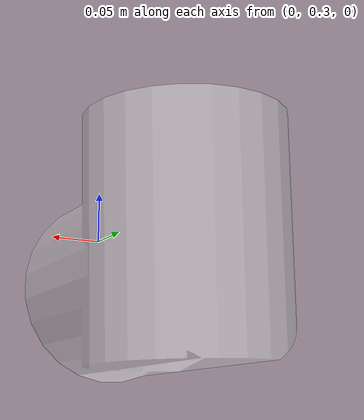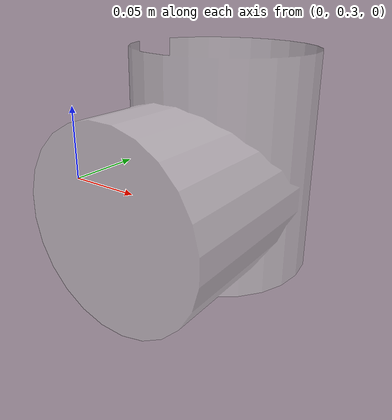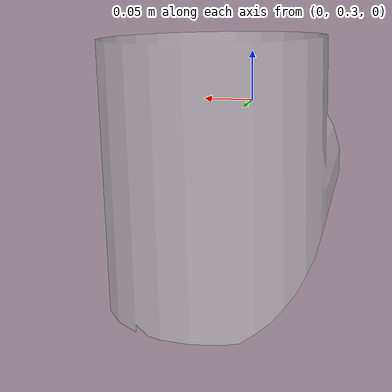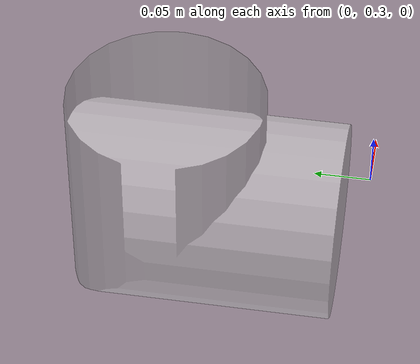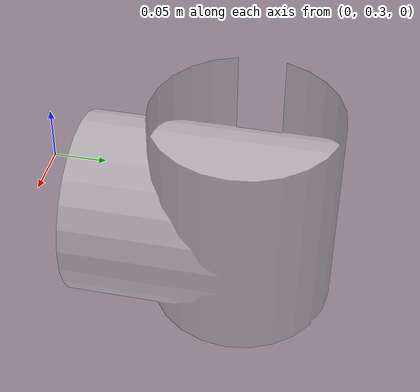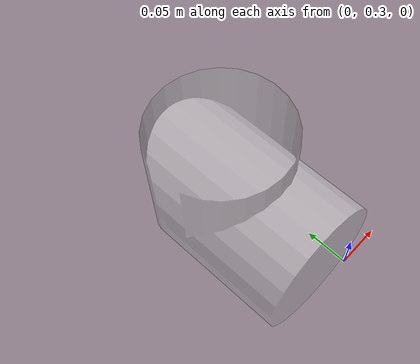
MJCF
<mujoco model="original-10">
  <default>
    <default class="visual">
      <geom group="2" type="mesh" contype="0" conaffinity="0"/>
    </default>
    <default class="collision">
      <geom group="3" type="mesh"/>
    </default>
  </default>
  <asset>
    <material name="material_0_0" specular="0.06666666666666667" shininess="0.03" rgba="0.8627450980392157 0.8627450980392157 0.8627450980392157 0.5019608"/>
    <mesh file="original-10.obj"/>
  </asset>
  <worldbody>
    <body name="original-10">
      <geom material="material_0_0" mesh="original-10" class="visual"/>
      <geom mesh="original-10" class="collision"/>
    </body>
  </worldbody>
</mujoco>
